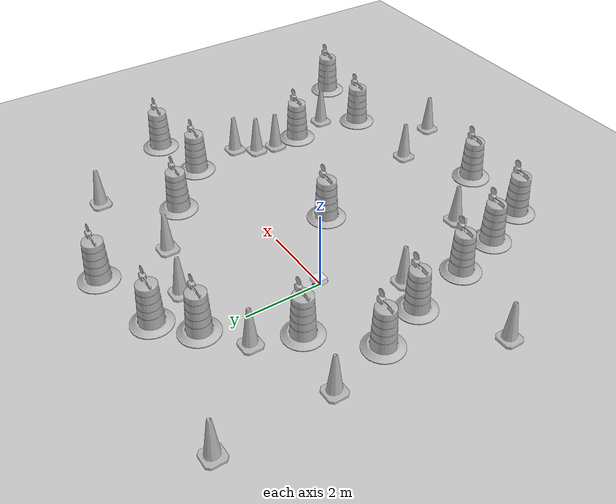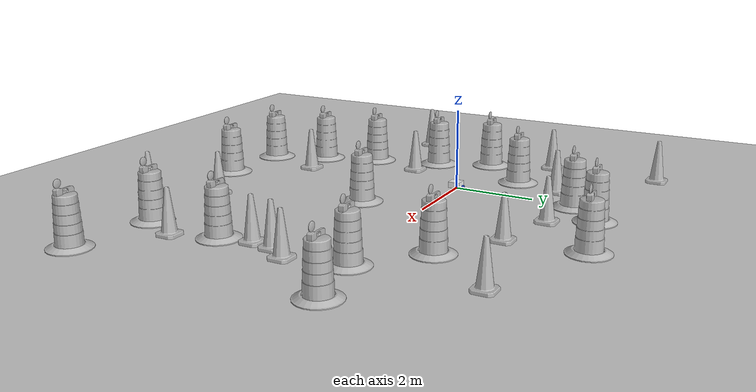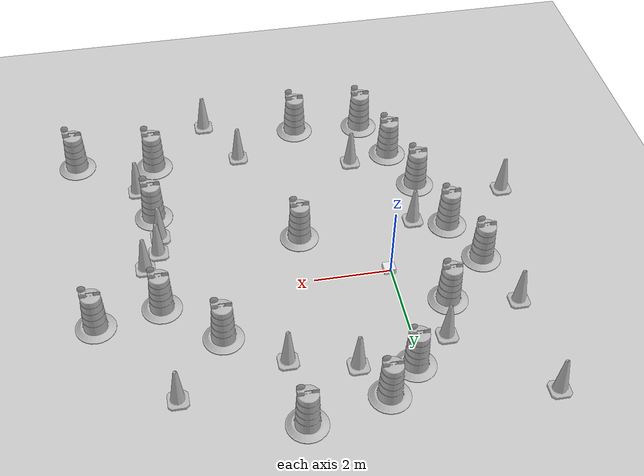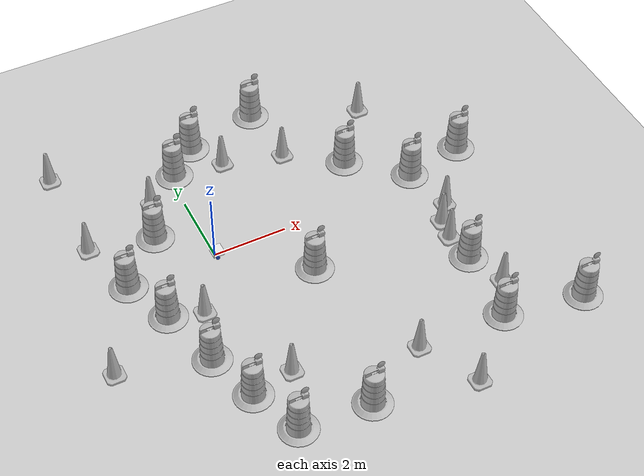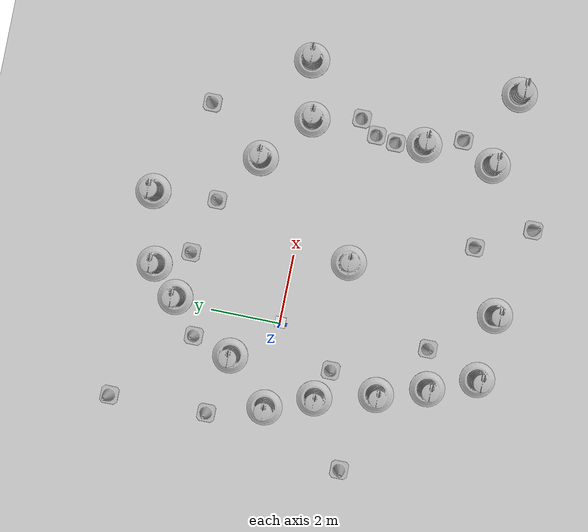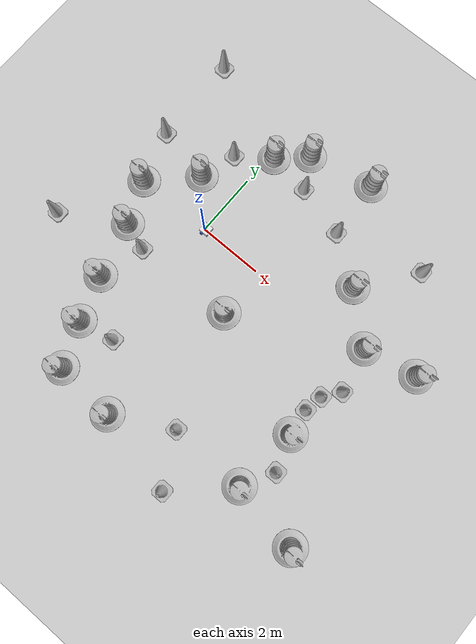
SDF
<sdf version="1.7">
 <world name="default">
  <light name="sun" type="directional">
   <pose>0 0 10 0 -0 0</pose>
   <diffuse>0.8 0.8 0.8 1</diffuse>
   <specular>0.2 0.2 0.2 1</specular>
   <attenuation>
    <range>1000</range>
    <constant>0.9</constant>
    <linear>0.01</linear>
    <quadratic>0.001</quadratic>
   </attenuation>
   <direction>-0.5 0.1 -0.9</direction>
   <spot><inner_angle>0</inner_angle><outer_angle>0</outer_angle><falloff>0</falloff></spot>
  </light>
  <model name="ground_plane">
   <static>1</static>
   <link name="link">
    <collision name="collision">
     <geometry><plane><normal>0 0 1</normal><size>100 100</size></plane></geometry>
     <surface>
      <contact><collide_bitmask>65535</collide_bitmask></contact>
      <friction><ode><mu>100</mu><mu2>50</mu2></ode></friction>
     </surface>
    </collision>
    <visual name="visual">
     <cast_shadows>0</cast_shadows>
     <geometry><plane><normal>0 0 1</normal><size>100 100</size></plane></geometry>
     <material>
      <script><uri>file://media/materials/scripts/gazebo.material</uri><name>Gazebo/Grey</name></script>
     </material>
    </visual>
   </link>
  </model>
  <gravity>0 0 -9.8</gravity>
  <magnetic_field>6e-06 2.3e-05 -4.2e-05</magnetic_field>
  <atmosphere type="adiabatic"/>
  <physics type="ode">
   <max_step_size>0.001</max_step_size>
   <real_time_factor>1</real_time_factor>
   <real_time_update_rate>1000</real_time_update_rate>
  </physics>
  <scene><ambient>0.4 0.4 0.4 1</ambient><background>0.7 0.7 0.7 1</background><shadows>1</shadows></scene>
  <audio><device>default</device></audio>
  <spherical_coordinates>
   <surface_model>EARTH_WGS84</surface_model>
   <latitude_deg>0</latitude_deg>
   <longitude_deg>0</longitude_deg>
   <elevation>0</elevation>
   <heading_deg>0</heading_deg>
  </spherical_coordinates>
  <model name="my_bot">
   <link name="base_link">
    <inertial>
     <pose>0.065 0 0.0625 0 -0 0</pose>
     <mass>0.6</mass>
     <inertia>
      <ixx>0.00525625</ixx>
      <ixy>0</ixy>
      <ixz>0.0005625</ixz>
      <iyy>0.00593125</iyy>
      <iyz>0</iyz>
      <izz>0.008275</izz>
     </inertia>
    </inertial>
    <collision name="base_link_fixed_joint_lump__chassis_collision">
     <pose>0.05 0 0.075 0 -0 0</pose>
     <geometry><box><size>0.3 0.3 0.15</size></box></geometry>
    </collision>
    <collision name="base_link_fixed_joint_lump__caster_wheel_collision_1">
     <pose>0.14 0 0 0 -0 0</pose>
     <geometry><sphere><radius>0.05</radius></sphere></geometry>
     <surface><friction><ode><mu>0.001</mu><mu2>0.001</mu2></ode></friction></surface>
    </collision>
    <visual name="base_link_fixed_joint_lump__chassis_visual">
     <pose>0.05 0 0.075 0 -0 0</pose>
     <geometry><box><size>0.3 0.3 0.15</size></box></geometry>
     <material>
      <script><name>Gazebo/white</name><uri>file://media/materials/scripts/gazebo.material</uri></script>
     </material>
    </visual>
    <visual name="base_link_fixed_joint_lump__caster_wheel_visual_1">
     <pose>0.14 0 0 0 -0 0</pose>
     <geometry><sphere><radius>0.05</radius></sphere></geometry>
     <material>
      <script><name>Gazebo/Black</name><uri>file://media/materials/scripts/gazebo.material</uri></script>
     </material>
    </visual>
   </link>
   <joint name="left_wheel_joint" type="revolute">
    <pose relative_to="base_link">0 0.175 0 -1.5708 0 0</pose>
    <parent>base_link</parent>
    <child>left_wheel</child>
    <axis>
     <xyz>0 0 1</xyz>
     <limit><lower>-1e+16</lower><upper>1e+16</upper></limit>
     <dynamics><spring_reference>0</spring_reference><spring_stiffness>0</spring_stiffness></dynamics>
    </axis>
   </joint>
   <link name="left_wheel">
    <pose relative_to="left_wheel_joint">0 0 0 0 -0 0</pose>
    <inertial>
     <mass>0.1</mass>
     <inertia>
      <ixx>8.33333e-05</ixx>
      <ixy>0</ixy>
      <ixz>0</ixz>
      <iyy>8.33333e-05</iyy>
      <iyz>0</iyz>
      <izz>0.000125</izz>
     </inertia>
    </inertial>
    <collision name="left_wheel_collision">
     <geometry><cylinder><length>0.04</length><radius>0.05</radius></cylinder></geometry>
    </collision>
    <visual name="left_wheel_visual">
     <geometry><cylinder><length>0.04</length><radius>0.05</radius></cylinder></geometry>
     <material>
      <script><name>Gazebo/Blue</name><uri>file://media/materials/scripts/gazebo.material</uri></script>
     </material>
    </visual>
   </link>
   <joint name="right_wheel_joint" type="revolute">
    <pose relative_to="base_link">0 -0.175 0 1.5708 -0 0</pose>
    <parent>base_link</parent>
    <child>right_wheel</child>
    <axis>
     <xyz>0 0 -1</xyz>
     <limit><lower>-1e+16</lower><upper>1e+16</upper></limit>
     <dynamics><spring_reference>0</spring_reference><spring_stiffness>0</spring_stiffness></dynamics>
    </axis>
   </joint>
   <link name="right_wheel">
    <pose relative_to="right_wheel_joint">0 0 0 0 -0 0</pose>
    <inertial>
     <mass>0.1</mass>
     <inertia>
      <ixx>8.33333e-05</ixx>
      <ixy>0</ixy>
      <ixz>0</ixz>
      <iyy>8.33333e-05</iyy>
      <iyz>0</iyz>
      <izz>0.000125</izz>
     </inertia>
    </inertial>
    <collision name="right_wheel_collision">
     <geometry><cylinder><length>0.04</length><radius>0.05</radius></cylinder></geometry>
    </collision>
    <visual name="right_wheel_visual">
     <geometry><cylinder><length>0.04</length><radius>0.05</radius></cylinder></geometry>
     <material>
      <script><name>Gazebo/Blue</name><uri>file://media/materials/scripts/gazebo.material</uri></script>
     </material>
    </visual>
   </link>
   <static>0</static>
   <plugin name="diff_drive" filename="libgazebo_ros_diff_drive.so">
    <left_joint>left_wheel_joint</left_joint>
    <right_joint>right_wheel_joint</right_joint>
    <wheel_separation>0.35</wheel_separation>
    <wheel_diameter>0.1</wheel_diameter>
    <max_wheel_torque>200</max_wheel_torque>
    <max_wheel_acceleration>10.0</max_wheel_acceleration>
    <odometry_frame>odom</odometry_frame>
    <robot_base_frame>base_link</robot_base_frame>
    <publish_odom>1</publish_odom>
    <publish_odom_tf>1</publish_odom_tf>
    <publish_wheel_tf>1</publish_wheel_tf>
   </plugin>
   <pose>0.008008 0.000126 0.05 0 1e-06 0.002054</pose>
  </model>
  <model name="Construction Barrel">
   <link name="link">
    <inertial>
     <pose>0 0 0.4 0 -0 0</pose>
     <mass>500</mass>
     <inertia><ixx>51.2096</ixx><iyy>51.2096</iyy><izz>25</izz><ixy>0</ixy><ixz>0</ixz><iyz>0</iyz></inertia>
    </inertial>
    <collision name="collision">
     <geometry><mesh><uri>model://construction_barrel/meshes/construction_barrel.dae</uri></mesh></geometry>
    </collision>
    <visual name="visual">
     <geometry><mesh><uri>model://construction_barrel/meshes/construction_barrel.dae</uri></mesh></geometry>
    </visual>
   </link>
   <pose>2.09819 -1.57558 1e-06 3e-06 2e-06 -4.4e-05</pose>
  </model>
  <model name="Construction Cone">
   <link name="link">
    <collision name="collision">
     <geometry>
      <mesh><scale>10 10 10</scale><uri>model://construction_cone/meshes/construction_cone.dae</uri></mesh>
     </geometry>
    </collision>
    <visual name="visual">
     <geometry>
      <mesh><scale>10 10 10</scale><uri>model://construction_cone/meshes/construction_cone.dae</uri></mesh>
     </geometry>
    </visual>
    <inertial>
     <inertia><ixx>1</ixx><ixy>0</ixy><ixz>0</ixz><iyy>1</iyy><iyz>0</iyz><izz>1</izz></inertia>
     <mass>1</mass>
    </inertial>
   </link>
   <pose>1.50284 2.88326 -0 0 -0 0</pose>
  </model>
  <model name="Construction Cone_0">
   <link name="link">
    <collision name="collision">
     <geometry>
      <mesh><scale>10 10 10</scale><uri>model://construction_cone/meshes/construction_cone.dae</uri></mesh>
     </geometry>
    </collision>
    <visual name="visual">
     <geometry>
      <mesh><scale>10 10 10</scale><uri>model://construction_cone/meshes/construction_cone.dae</uri></mesh>
     </geometry>
    </visual>
    <inertial>
     <inertia><ixx>1</ixx><ixy>0</ixy><ixz>0</ixz><iyy>1</iyy><iyz>0</iyz><izz>1</izz></inertia>
     <mass>1</mass>
    </inertial>
   </link>
   <pose>3.11159 2.45327 -0 0 -0 0</pose>
  </model>
  <model name="Construction Cone_1">
   <link name="link">
    <collision name="collision">
     <geometry>
      <mesh><scale>10 10 10</scale><uri>model://construction_cone/meshes/construction_cone.dae</uri></mesh>
     </geometry>
    </collision>
    <visual name="visual">
     <geometry>
      <mesh><scale>10 10 10</scale><uri>model://construction_cone/meshes/construction_cone.dae</uri></mesh>
     </geometry>
    </visual>
    <inertial>
     <inertia><ixx>1</ixx><ixy>0</ixy><ixz>0</ixz><iyy>1</iyy><iyz>0</iyz><izz>1</izz></inertia>
     <mass>1</mass>
    </inertial>
   </link>
   <pose>-0.817008 2.33906 -1e-06 1e-06 -2e-06 -0</pose>
  </model>
  <model name="Construction Barrel_0">
   <link name="link">
    <inertial>
     <pose>0 0 0.4 0 -0 0</pose>
     <mass>500</mass>
     <inertia><ixx>51.2096</ixx><iyy>51.2096</iyy><izz>25</izz><ixy>0</ixy><ixz>0</ixz><iyz>0</iyz></inertia>
    </inertial>
    <collision name="collision">
     <geometry><mesh><uri>model://construction_barrel/meshes/construction_barrel.dae</uri></mesh></geometry>
    </collision>
    <visual name="visual">
     <geometry><mesh><uri>model://construction_barrel/meshes/construction_barrel.dae</uri></mesh></geometry>
    </visual>
   </link>
   <pose>0.159267 3.07608 1e-06 3e-06 2e-06 -3.9e-05</pose>
  </model>
  <model name="Construction Barrel_1">
   <link name="link">
    <inertial>
     <pose>0 0 0.4 0 -0 0</pose>
     <mass>500</mass>
     <inertia><ixx>51.2096</ixx><iyy>51.2096</iyy><izz>25</izz><ixy>0</ixy><ixz>0</ixz><iyz>0</iyz></inertia>
    </inertial>
    <collision name="collision">
     <geometry><mesh><uri>model://construction_barrel/meshes/construction_barrel.dae</uri></mesh></geometry>
    </collision>
    <visual name="visual">
     <geometry><mesh><uri>model://construction_barrel/meshes/construction_barrel.dae</uri></mesh></geometry>
    </visual>
   </link>
   <pose>-1.43887 -3.08205 1e-06 3e-06 2e-06 -3.8e-05</pose>
  </model>
  <model name="Construction Cone_2">
   <link name="link">
    <collision name="collision">
     <geometry>
      <mesh><scale>10 10 10</scale><uri>model://construction_cone/meshes/construction_cone.dae</uri></mesh>
     </geometry>
    </collision>
    <visual name="visual">
     <geometry>
      <mesh><scale>10 10 10</scale><uri>model://construction_cone/meshes/construction_cone.dae</uri></mesh>
     </geometry>
    </visual>
    <inertial>
     <inertia><ixx>1</ixx><ixy>0</ixy><ixz>0</ixz><iyy>1</iyy><iyz>0</iyz><izz>1</izz></inertia>
     <mass>1</mass>
    </inertial>
   </link>
   <pose>-1.01261 -1.67705 -6e-06 2e-06 -0 0</pose>
  </model>
  <model name="Construction Barrel_2">
   <link name="link">
    <inertial>
     <pose>0 0 0.4 0 -0 0</pose>
     <mass>500</mass>
     <inertia><ixx>51.2096</ixx><iyy>51.2096</iyy><izz>25</izz><ixy>0</ixy><ixz>0</ixz><iyz>0</iyz></inertia>
    </inertial>
    <collision name="collision">
     <geometry><mesh><uri>model://construction_barrel/meshes/construction_barrel.dae</uri></mesh></geometry>
    </collision>
    <visual name="visual">
     <geometry><mesh><uri>model://construction_barrel/meshes/construction_barrel.dae</uri></mesh></geometry>
    </visual>
   </link>
   <pose>-2.41702 -0.036887 1e-06 3e-06 2e-06 -3.5e-05</pose>
  </model>
  <model name="Construction Cone_3">
   <link name="link">
    <collision name="collision">
     <geometry>
      <mesh><scale>10 10 10</scale><uri>model://construction_cone/meshes/construction_cone.dae</uri></mesh>
     </geometry>
    </collision>
    <visual name="visual">
     <geometry>
      <mesh><scale>10 10 10</scale><uri>model://construction_cone/meshes/construction_cone.dae</uri></mesh>
     </geometry>
    </visual>
    <inertial>
     <inertia><ixx>1</ixx><ixy>0</ixy><ixz>0</ixz><iyy>1</iyy><iyz>0</iyz><izz>1</izz></inertia>
     <mass>1</mass>
    </inertial>
   </link>
   <pose>-2.89637 1.558 -0 0 -0 0</pose>
  </model>
  <model name="Construction Cone_4">
   <link name="link">
    <collision name="collision">
     <geometry>
      <mesh><scale>10 10 10</scale><uri>model://construction_cone/meshes/construction_cone.dae</uri></mesh>
     </geometry>
    </collision>
    <visual name="visual">
     <geometry>
      <mesh><scale>10 10 10</scale><uri>model://construction_cone/meshes/construction_cone.dae</uri></mesh>
     </geometry>
    </visual>
    <inertial>
     <inertia><ixx>1</ixx><ixy>0</ixy><ixz>0</ixz><iyy>1</iyy><iyz>0</iyz><izz>1</izz></inertia>
     <mass>1</mass>
    </inertial>
   </link>
   <pose>-3.73492 -2.47418 -0 0 -0 0</pose>
  </model>
  <model name="Construction Cone_5">
   <link name="link">
    <collision name="collision">
     <geometry>
      <mesh><scale>10 10 10</scale><uri>model://construction_cone/meshes/construction_cone.dae</uri></mesh>
     </geometry>
    </collision>
    <visual name="visual">
     <geometry>
      <mesh><scale>10 10 10</scale><uri>model://construction_cone/meshes/construction_cone.dae</uri></mesh>
     </geometry>
    </visual>
    <inertial>
     <inertia><ixx>1</ixx><ixy>0</ixy><ixz>0</ixz><iyy>1</iyy><iyz>0</iyz><izz>1</izz></inertia>
     <mass>1</mass>
    </inertial>
   </link>
   <pose>-2.93971 4.36068 -0 0 -0 0</pose>
  </model>
  <model name="Construction Barrel_3">
   <link name="link">
    <inertial>
     <pose>0 0 0.4 0 -0 0</pose>
     <mass>500</mass>
     <inertia><ixx>51.2096</ixx><iyy>51.2096</iyy><izz>25</izz><ixy>0</ixy><ixz>0</ixz><iyz>0</iyz></inertia>
    </inertial>
    <collision name="collision">
     <geometry><mesh><uri>model://construction_barrel/meshes/construction_barrel.dae</uri></mesh></geometry>
    </collision>
    <visual name="visual">
     <geometry><mesh><uri>model://construction_barrel/meshes/construction_barrel.dae</uri></mesh></geometry>
    </visual>
   </link>
   <pose>-1.1662 1.21308 1e-06 3e-06 2e-06 -3.1e-05</pose>
  </model>
  <model name="Construction Cone_6">
   <link name="link">
    <collision name="collision">
     <geometry>
      <mesh><scale>10 10 10</scale><uri>model://construction_cone/meshes/construction_cone.dae</uri></mesh>
     </geometry>
    </collision>
    <visual name="visual">
     <geometry>
      <mesh><scale>10 10 10</scale><uri>model://construction_cone/meshes/construction_cone.dae</uri></mesh>
     </geometry>
    </visual>
    <inertial>
     <inertia><ixx>1</ixx><ixy>0</ixy><ixz>0</ixz><iyy>1</iyy><iyz>0</iyz><izz>1</izz></inertia>
     <mass>1</mass>
    </inertial>
   </link>
   <pose>0.13975 -4.2686 -5e-06 -4e-06 1e-06 0</pose>
  </model>
  <model name="Construction Barrel_4">
   <link name="link">
    <inertial>
     <pose>0 0 0.4 0 -0 0</pose>
     <mass>500</mass>
     <inertia><ixx>51.2096</ixx><iyy>51.2096</iyy><izz>25</izz><ixy>0</ixy><ixz>0</ixz><iyz>0</iyz></inertia>
    </inertial>
    <collision name="collision">
     <geometry><mesh><uri>model://construction_barrel/meshes/construction_barrel.dae</uri></mesh></geometry>
    </collision>
    <visual name="visual">
     <geometry><mesh><uri>model://construction_barrel/meshes/construction_barrel.dae</uri></mesh></geometry>
    </visual>
   </link>
   <pose>5.89733 0.256096 1e-06 3e-06 2e-06 -2.8e-05</pose>
  </model>
  <model name="Construction Cone_7">
   <link name="link">
    <collision name="collision">
     <geometry>
      <mesh><scale>10 10 10</scale><uri>model://construction_cone/meshes/construction_cone.dae</uri></mesh>
     </geometry>
    </collision>
    <visual name="visual">
     <geometry>
      <mesh><scale>10 10 10</scale><uri>model://construction_cone/meshes/construction_cone.dae</uri></mesh>
     </geometry>
    </visual>
    <inertial>
     <inertia><ixx>1</ixx><ixy>0</ixy><ixz>0</ixz><iyy>1</iyy><iyz>0</iyz><izz>1</izz></inertia>
     <mass>1</mass>
    </inertial>
   </link>
   <pose>5.79782 3.13182 -0 0 -0 0</pose>
  </model>
  <model name="Construction Barrel_5">
   <link name="link">
    <inertial>
     <pose>0 0 0.4 0 -0 0</pose>
     <mass>500</mass>
     <inertia><ixx>51.2096</ixx><iyy>51.2096</iyy><izz>25</izz><ixy>0</ixy><ixz>0</ixz><iyz>0</iyz></inertia>
    </inertial>
    <collision name="collision">
     <geometry><mesh><uri>model://construction_barrel/meshes/construction_barrel.dae</uri></mesh></geometry>
    </collision>
    <visual name="visual">
     <geometry><mesh><uri>model://construction_barrel/meshes/construction_barrel.dae</uri></mesh></geometry>
    </visual>
   </link>
   <pose>4.5226 1.47687 1e-06 3e-06 2e-06 -2.6e-05</pose>
  </model>
  <model name="Construction Cone_8">
   <link name="link">
    <collision name="collision">
     <geometry>
      <mesh><scale>10 10 10</scale><uri>model://construction_cone/meshes/construction_cone.dae</uri></mesh>
     </geometry>
    </collision>
    <visual name="visual">
     <geometry>
      <mesh><scale>10 10 10</scale><uri>model://construction_cone/meshes/construction_cone.dae</uri></mesh>
     </geometry>
    </visual>
    <inertial>
     <inertia><ixx>1</ixx><ixy>0</ixy><ixz>0</ixz><iyy>1</iyy><iyz>0</iyz><izz>1</izz></inertia>
     <mass>1</mass>
    </inertial>
   </link>
   <pose>3.24095 -5.00781 -2e-06 -3e-06 -1e-06 -0</pose>
  </model>
  <model name="Construction Barrel_6">
   <link name="link">
    <inertial>
     <pose>0 0 0.4 0 -0 0</pose>
     <mass>500</mass>
     <inertia><ixx>51.2096</ixx><iyy>51.2096</iyy><izz>25</izz><ixy>0</ixy><ixz>0</ixz><iyz>0</iyz></inertia>
    </inertial>
    <collision name="collision">
     <geometry><mesh><uri>model://construction_barrel/meshes/construction_barrel.dae</uri></mesh></geometry>
    </collision>
    <visual name="visual">
     <geometry><mesh><uri>model://construction_barrel/meshes/construction_barrel.dae</uri></mesh></geometry>
    </visual>
   </link>
   <pose>5.62252 -5.04364 1e-06 3e-06 2e-06 -2.3e-05</pose>
  </model>
  <model name="Construction Barrel_7">
   <link name="link">
    <inertial>
     <pose>0 0 0.4 0 -0 0</pose>
     <mass>500</mass>
     <inertia><ixx>51.2096</ixx><iyy>51.2096</iyy><izz>25</izz><ixy>0</ixy><ixz>0</ixz><iyz>0</iyz></inertia>
    </inertial>
    <collision name="collision">
     <geometry><mesh><uri>model://construction_barrel/meshes/construction_barrel.dae</uri></mesh></geometry>
    </collision>
    <visual name="visual">
     <geometry><mesh><uri>model://construction_barrel/meshes/construction_barrel.dae</uri></mesh></geometry>
    </visual>
   </link>
   <pose>1.44351 -5.95778 1e-06 3e-06 2e-06 -2.2e-05</pose>
  </model>
  <model name="Construction Cone_9">
   <link name="link">
    <collision name="collision">
     <geometry>
      <mesh><scale>10 10 10</scale><uri>model://construction_cone/meshes/construction_cone.dae</uri></mesh>
     </geometry>
    </collision>
    <visual name="visual">
     <geometry>
      <mesh><scale>10 10 10</scale><uri>model://construction_cone/meshes/construction_cone.dae</uri></mesh>
     </geometry>
    </visual>
    <inertial>
     <inertia><ixx>1</ixx><ixy>0</ixy><ixz>0</ixz><iyy>1</iyy><iyz>0</iyz><izz>1</izz></inertia>
     <mass>1</mass>
    </inertial>
   </link>
   <pose>4.04869 -6.53722 -0 0 -0 0</pose>
  </model>
  <model name="Construction Barrel_8">
   <link name="link">
    <inertial>
     <pose>0 0 0.4 0 -0 0</pose>
     <mass>500</mass>
     <inertia><ixx>51.2096</ixx><iyy>51.2096</iyy><izz>25</izz><ixy>0</ixy><ixz>0</ixz><iyz>0</iyz></inertia>
    </inertial>
    <collision name="collision">
     <geometry><mesh><uri>model://construction_barrel/meshes/construction_barrel.dae</uri></mesh></geometry>
    </collision>
    <visual name="visual">
     <geometry><mesh><uri>model://construction_barrel/meshes/construction_barrel.dae</uri></mesh></geometry>
    </visual>
   </link>
   <pose>7.76032 -5.39633 1e-06 3e-06 2e-06 -2e-05</pose>
  </model>
  <model name="Construction Barrel_9">
   <link name="link">
    <inertial>
     <pose>0 0 0.4 0 -0 0</pose>
     <mass>500</mass>
     <inertia><ixx>51.2096</ixx><iyy>51.2096</iyy><izz>25</izz><ixy>0</ixy><ixz>0</ixz><iyz>0</iyz></inertia>
    </inertial>
    <collision name="collision">
     <geometry><mesh><uri>model://construction_barrel/meshes/construction_barrel.dae</uri></mesh></geometry>
    </collision>
    <visual name="visual">
     <geometry><mesh><uri>model://construction_barrel/meshes/construction_barrel.dae</uri></mesh></geometry>
    </visual>
   </link>
   <pose>7.54734 0.59749 -0 0 0 -1.8e-05</pose>
  </model>
  <model name="Construction Barrel_10">
   <link name="link">
    <inertial>
     <pose>0 0 0.4 0 -0 0</pose>
     <mass>500</mass>
     <inertia><ixx>51.2096</ixx><iyy>51.2096</iyy><izz>25</izz><ixy>0</ixy><ixz>0</ixz><iyz>0</iyz></inertia>
    </inertial>
    <collision name="collision">
     <geometry><mesh><uri>model://construction_barrel/meshes/construction_barrel.dae</uri></mesh></geometry>
    </collision>
    <visual name="visual">
     <geometry><mesh><uri>model://construction_barrel/meshes/construction_barrel.dae</uri></mesh></geometry>
    </visual>
   </link>
   <pose>2.99377 4.28864 -2e-06 8e-06 -4e-06 -1.7e-05</pose>
  </model>
  <model name="Construction Cone_10">
   <link name="link">
    <collision name="collision">
     <geometry>
      <mesh><scale>10 10 10</scale><uri>model://construction_cone/meshes/construction_cone.dae</uri></mesh>
     </geometry>
    </collision>
    <visual name="visual">
     <geometry>
      <mesh><scale>10 10 10</scale><uri>model://construction_cone/meshes/construction_cone.dae</uri></mesh>
     </geometry>
    </visual>
    <inertial>
     <inertia><ixx>1</ixx><ixy>0</ixy><ixz>0</ixz><iyy>1</iyy><iyz>0</iyz><izz>1</izz></inertia>
     <mass>1</mass>
    </inertial>
   </link>
   <pose>6.19514 -1.13024 -1e-05 -1e-06 0 0</pose>
  </model>
  <model name="Construction Cone_11">
   <link name="link">
    <collision name="collision">
     <geometry>
      <mesh><scale>10 10 10</scale><uri>model://construction_cone/meshes/construction_cone.dae</uri></mesh>
     </geometry>
    </collision>
    <visual name="visual">
     <geometry>
      <mesh><scale>10 10 10</scale><uri>model://construction_cone/meshes/construction_cone.dae</uri></mesh>
     </geometry>
    </visual>
    <inertial>
     <inertia><ixx>1</ixx><ixy>0</ixy><ixz>0</ixz><iyy>1</iyy><iyz>0</iyz><izz>1</izz></inertia>
     <mass>1</mass>
    </inertial>
   </link>
   <pose>5.81196 -1.63229 -0 0 -0 0</pose>
  </model>
  <model name="Construction Cone_12">
   <link name="link">
    <collision name="collision">
     <geometry>
      <mesh><scale>10 10 10</scale><uri>model://construction_cone/meshes/construction_cone.dae</uri></mesh>
     </geometry>
    </collision>
    <visual name="visual">
     <geometry>
      <mesh><scale>10 10 10</scale><uri>model://construction_cone/meshes/construction_cone.dae</uri></mesh>
     </geometry>
    </visual>
    <inertial>
     <inertia><ixx>1</ixx><ixy>0</ixy><ixz>0</ixz><iyy>1</iyy><iyz>0</iyz><izz>1</izz></inertia>
     <mass>1</mass>
    </inertial>
   </link>
   <pose>5.71438 -2.20648 -1e-05 -0 -0 -0</pose>
  </model>
  <model name="Construction Barrel_11">
   <link name="link">
    <inertial>
     <pose>0 0 0.4 0 -0 0</pose>
     <mass>500</mass>
     <inertia><ixx>51.2096</ixx><iyy>51.2096</iyy><izz>25</izz><ixy>0</ixy><ixz>0</ixz><iyz>0</iyz></inertia>
    </inertial>
    <collision name="collision">
     <geometry><mesh><uri>model://construction_barrel/meshes/construction_barrel.dae</uri></mesh></geometry>
    </collision>
    <visual name="visual">
     <geometry><mesh><uri>model://construction_barrel/meshes/construction_barrel.dae</uri></mesh></geometry>
    </visual>
   </link>
   <pose>5.81538 -3.01411 -1e-06 0 5e-06 -1e-05</pose>
  </model>
  <model name="Construction Cone_13">
   <link name="link">
    <collision name="collision">
     <geometry>
      <mesh><scale>10 10 10</scale><uri>model://construction_cone/meshes/construction_cone.dae</uri></mesh>
     </geometry>
    </collision>
    <visual name="visual">
     <geometry>
      <mesh><scale>10 10 10</scale><uri>model://construction_cone/meshes/construction_cone.dae</uri></mesh>
     </geometry>
    </visual>
    <inertial>
     <inertia><ixx>1</ixx><ixy>0</ixy><ixz>0</ixz><iyy>1</iyy><iyz>0</iyz><izz>1</izz></inertia>
     <mass>1</mass>
    </inertial>
   </link>
   <pose>6.16338 -4.08772 -8e-06 1e-06 -0 0</pose>
  </model>
  <model name="Construction Barrel_12">
   <link name="link">
    <inertial>
     <pose>0 0 0.4 0 -0 0</pose>
     <mass>500</mass>
     <inertia><ixx>51.2096</ixx><iyy>51.2096</iyy><izz>25</izz><ixy>0</ixy><ixz>0</ixz><iyz>0</iyz></inertia>
    </inertial>
    <collision name="collision">
     <geometry><mesh><uri>model://construction_barrel/meshes/construction_barrel.dae</uri></mesh></geometry>
    </collision>
    <visual name="visual">
     <geometry><mesh><uri>model://construction_barrel/meshes/construction_barrel.dae</uri></mesh></geometry>
    </visual>
   </link>
   <pose>0.973612 3.84242 -1e-06 3e-06 1e-05 -7e-06</pose>
  </model>
  <model name="Construction Barrel_13">
   <link name="link">
    <inertial>
     <pose>0 0 0.4 0 -0 0</pose>
     <mass>500</mass>
     <inertia><ixx>51.2096</ixx><iyy>51.2096</iyy><izz>25</izz><ixy>0</ixy><ixz>0</ixz><iyz>0</iyz></inertia>
    </inertial>
    <collision name="collision">
     <geometry><mesh><uri>model://construction_barrel/meshes/construction_barrel.dae</uri></mesh></geometry>
    </collision>
    <visual name="visual">
     <geometry><mesh><uri>model://construction_barrel/meshes/construction_barrel.dae</uri></mesh></geometry>
    </visual>
   </link>
   <pose>-0.44804 -5.82351 1e-06 2e-06 3e-06 -6e-06</pose>
  </model>
  <model name="Construction Barrel_14">
   <link name="link">
    <inertial>
     <pose>0 0 0.4 0 -0 0</pose>
     <mass>500</mass>
     <inertia><ixx>51.2096</ixx><iyy>51.2096</iyy><izz>25</izz><ixy>0</ixy><ixz>0</ixz><iyz>0</iyz></inertia>
    </inertial>
    <collision name="collision">
     <geometry><mesh><uri>model://construction_barrel/meshes/construction_barrel.dae</uri></mesh></geometry>
    </collision>
    <visual name="visual">
     <geometry><mesh><uri>model://construction_barrel/meshes/construction_barrel.dae</uri></mesh></geometry>
    </visual>
   </link>
   <pose>-0.986923 -4.47953 0 0 0 -3e-06</pose>
  </model>
  <model name="Construction Barrel_15">
   <link name="link">
    <inertial>
     <pose>0 0 0.4 0 -0 0</pose>
     <mass>500</mass>
     <inertia><ixx>51.2096</ixx><iyy>51.2096</iyy><izz>25</izz><ixy>0</ixy><ixz>0</ixz><iyz>0</iyz></inertia>
    </inertial>
    <collision name="collision">
     <geometry><mesh><uri>model://construction_barrel/meshes/construction_barrel.dae</uri></mesh></geometry>
    </collision>
    <visual name="visual">
     <geometry><mesh><uri>model://construction_barrel/meshes/construction_barrel.dae</uri></mesh></geometry>
    </visual>
   </link>
   <pose>-1.88365 -1.37813 -1e-06 3e-06 -2e-06 -2e-06</pose>
  </model>
 </world>
</sdf>
